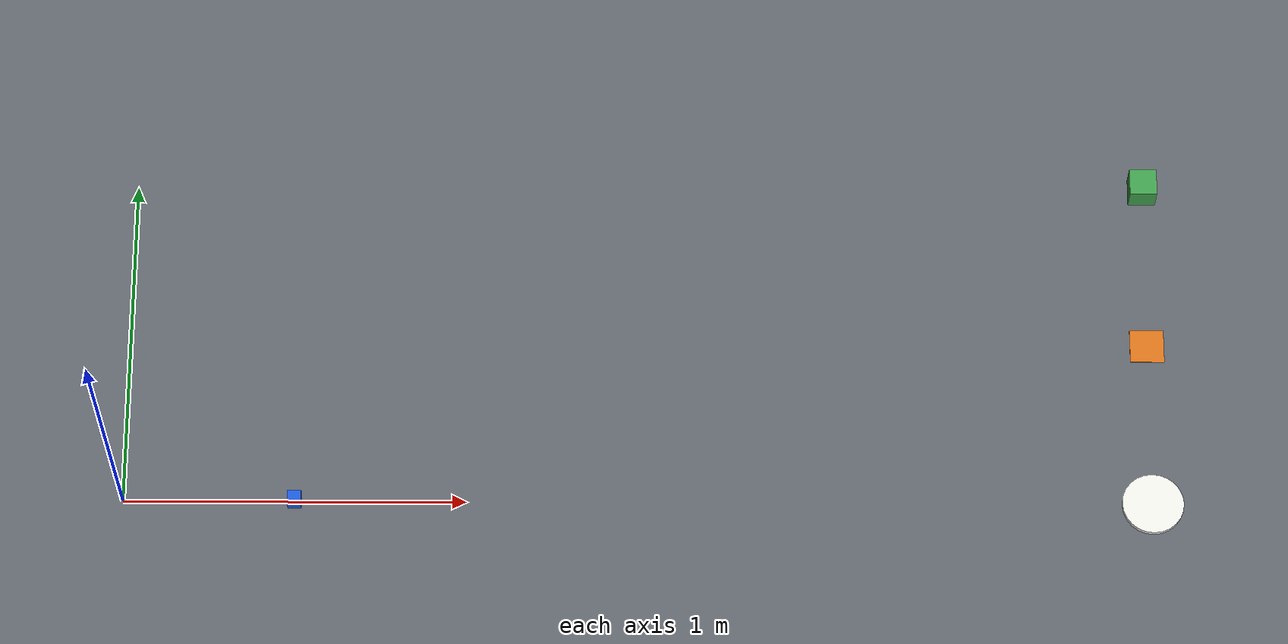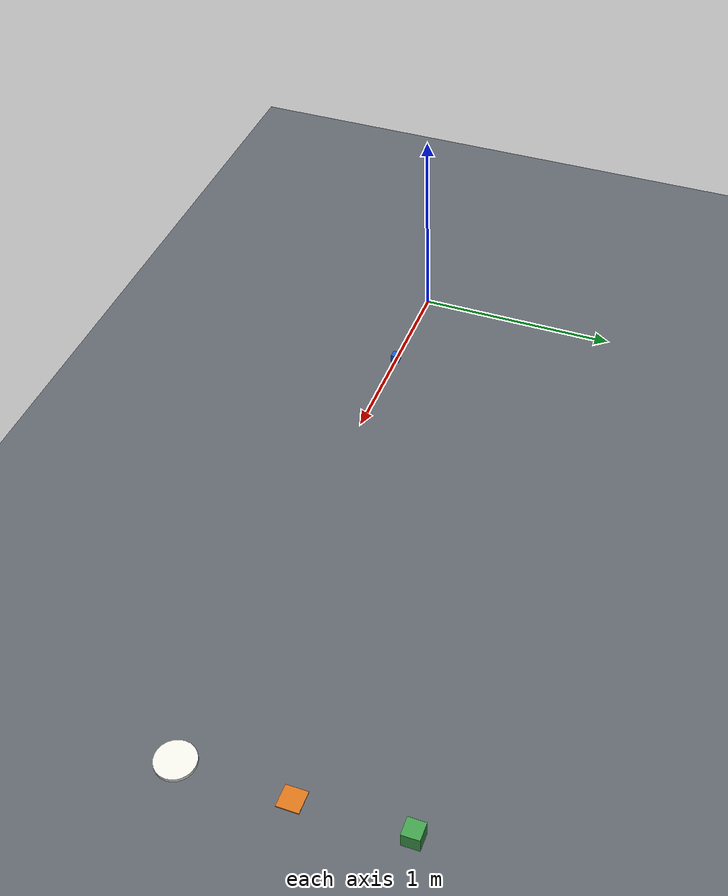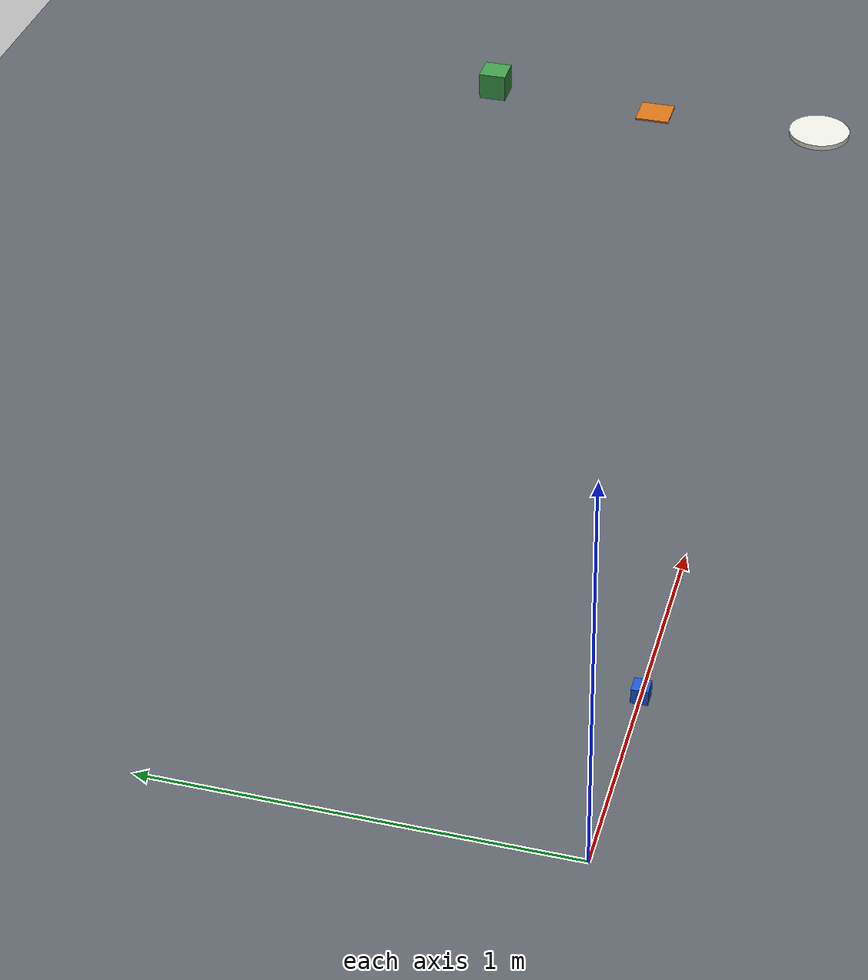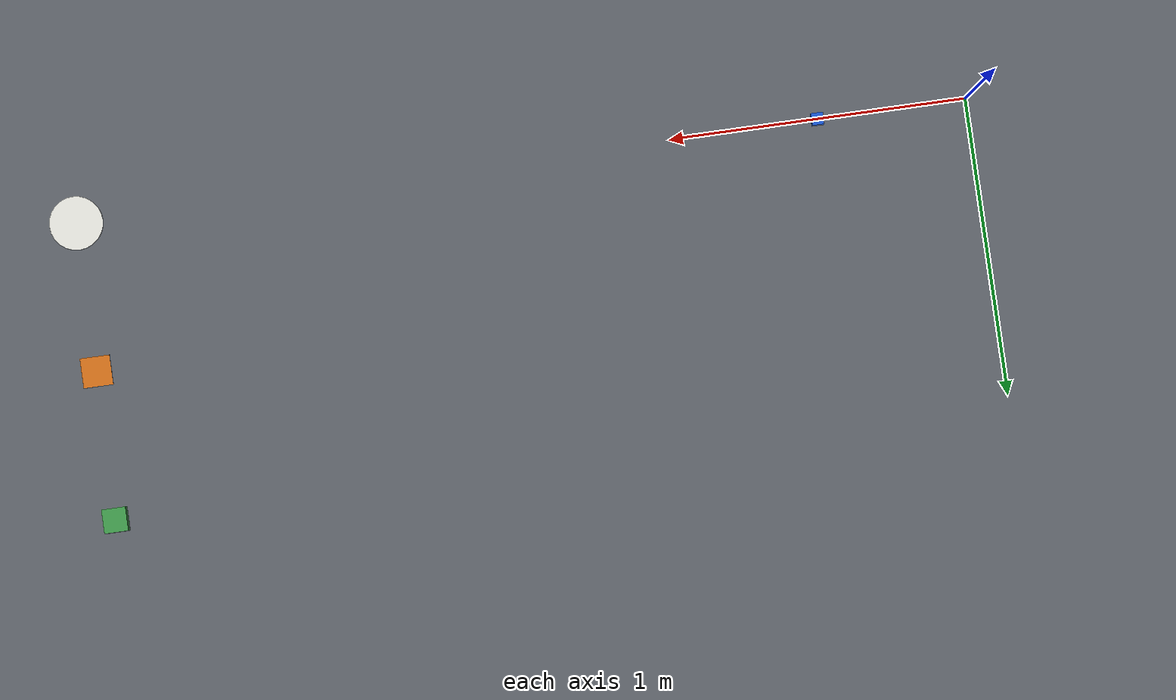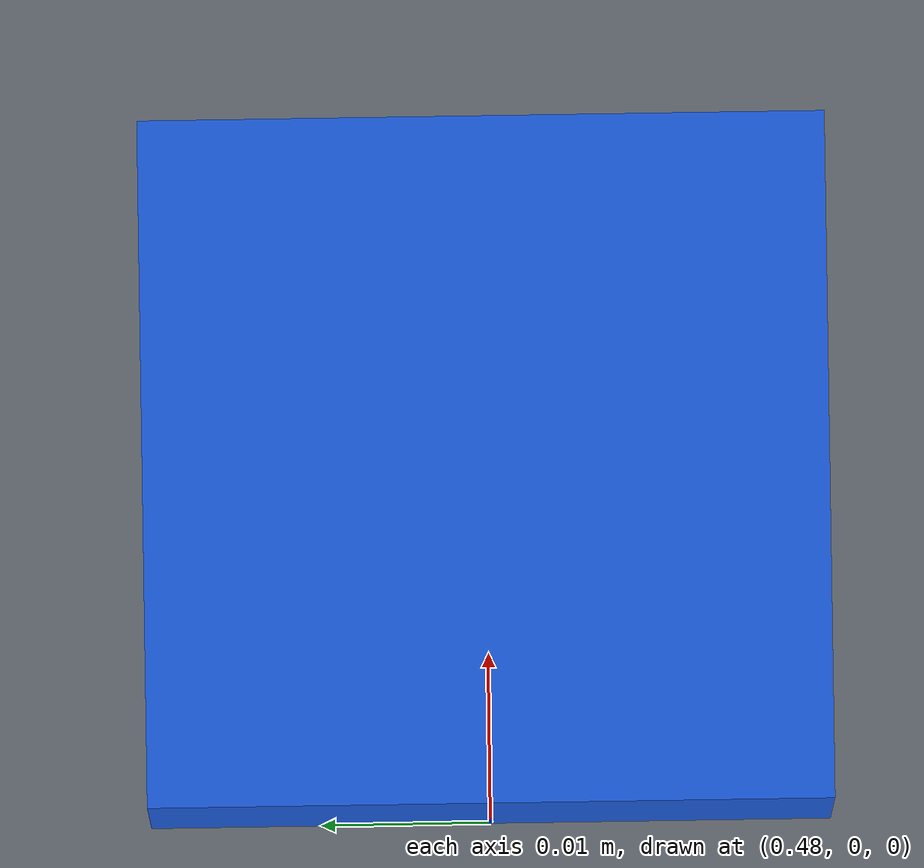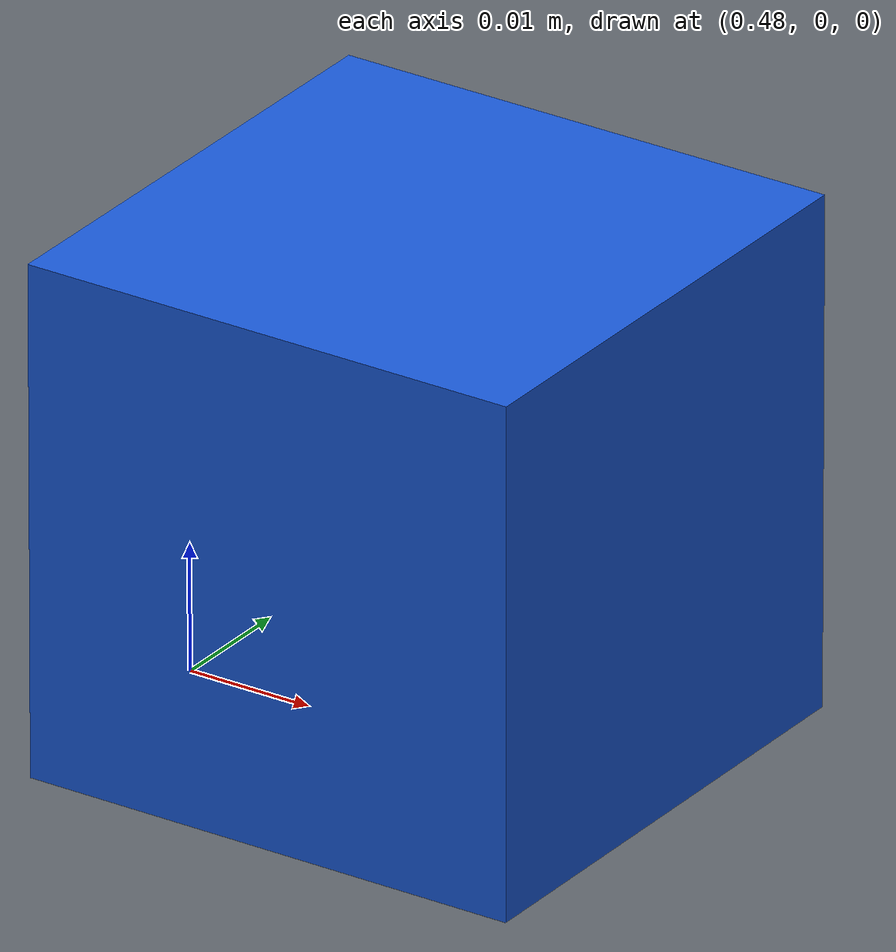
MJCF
<mujoco model="palm-prior table">

  <option timestep="0.002" integrator="implicitfast" cone="elliptic" impratio="10"/>

  <visual>
    <headlight diffuse="0.6 0.6 0.6" ambient="0.35 0.35 0.35" specular="0 0 0"/>
    <global azimuth="140" elevation="-25" offwidth="1280" offheight="960"/>
    <rgba haze="0.15 0.25 0.35 1"/>
  </visual>

  <asset>
    <texture type="skybox" builtin="gradient" rgb1="0.3 0.5 0.7" rgb2="0 0 0" width="512" height="3072"/>
    <texture type="2d" name="groundplane" builtin="checker" mark="edge"
      rgb1="0.42 0.44 0.47" rgb2="0.33 0.35 0.38" markrgb="0.6 0.6 0.6" width="300" height="300"/>
    <material name="groundplane" texture="groundplane" texuniform="true" texrepeat="2 2" reflectance="0"/>
    <material name="block_mat" rgba="0.10 0.35 0.85 1"/>
    <material name="plate_mat" rgba="0.93 0.93 0.90 1"/>
    <material name="pad_mat" rgba="0.85 0.45 0.10 1"/>
    <material name="box_mat" rgba="0.25 0.62 0.30 1"/>
  </asset>

  <worldbody>
    <light pos="0.9 -0.4 1.8" dir="-0.3 0.2 -1" directional="true" castshadow="true"/>
    <geom name="floor" size="0 0 0.05" type="plane" material="groundplane"/>

    <camera name="agentview" pos="1.05 -0.95 1.00" xyaxes="0.845 0.534 0 -0.325 0.514 0.793" fovy="45"/>

    <body name="block" pos="0.50 0.00 0.02">
      <freejoint name="block_free"/>
      <geom name="block" type="box" size="0.02 0.02 0.02" mass="0.05"
        friction="1.5 0.005 0.0001" material="block_mat"/>
    </body>

    <!-- The three goal objects are static: a layout moves them by editing body_pos. The
         two that a given episode does not use get parked off the floor plane's useful area. -->
    <body name="plate" pos="3.00 0.00 0.00">
      <geom name="plate" type="cylinder" size="0.09 0.0075" pos="0 0 0.0075"
        material="plate_mat" contype="0" conaffinity="0"/>
      <geom name="plate_contact" type="box" size="0.09 0.09 0.02" pos="0 0 -0.005" group="3"/>
    </body>
    <body name="pad" pos="3.00 0.50 0.00">
      <geom name="pad" type="box" size="0.05 0.05 0.0025" pos="0 0 0.0025" material="pad_mat"/>
    </body>
    <body name="box" pos="3.00 1.00 0.00">
      <geom name="box" type="box" size="0.04 0.04 0.04" pos="0 0 0.04" material="box_mat"/>
    </body>
  </worldbody>
</mujoco>
